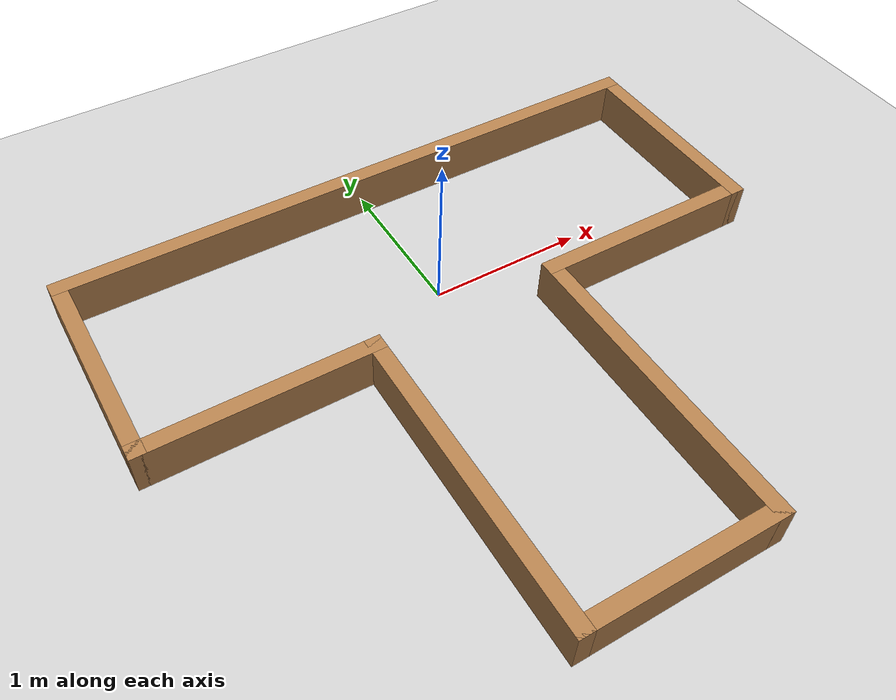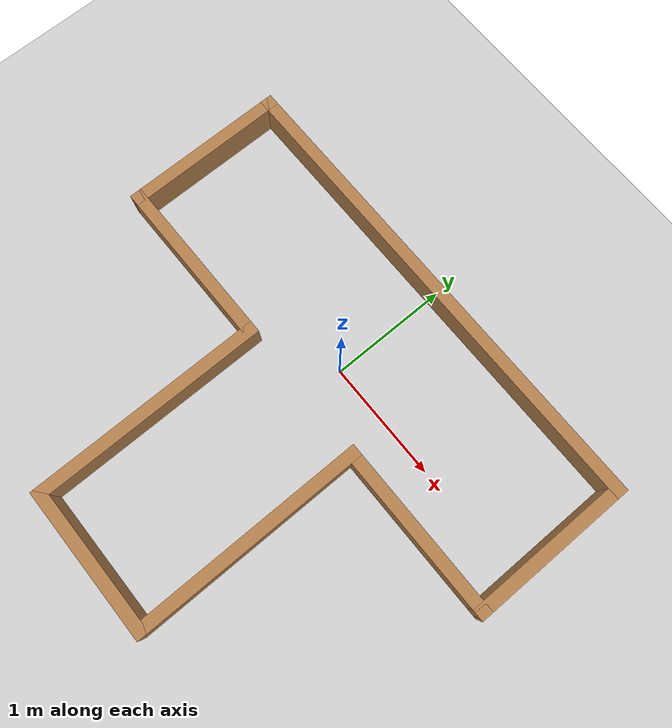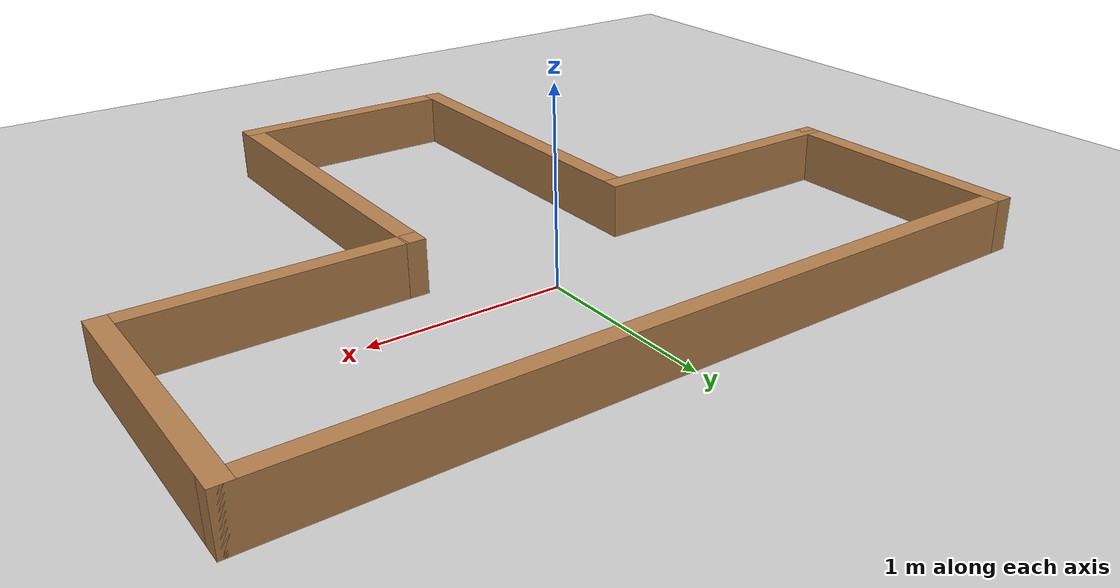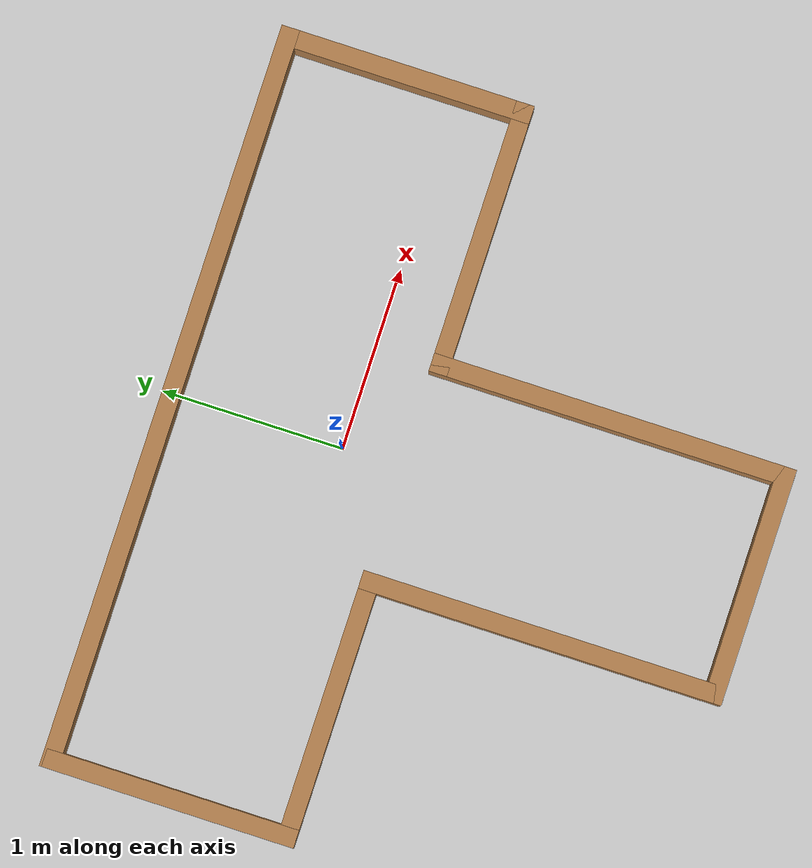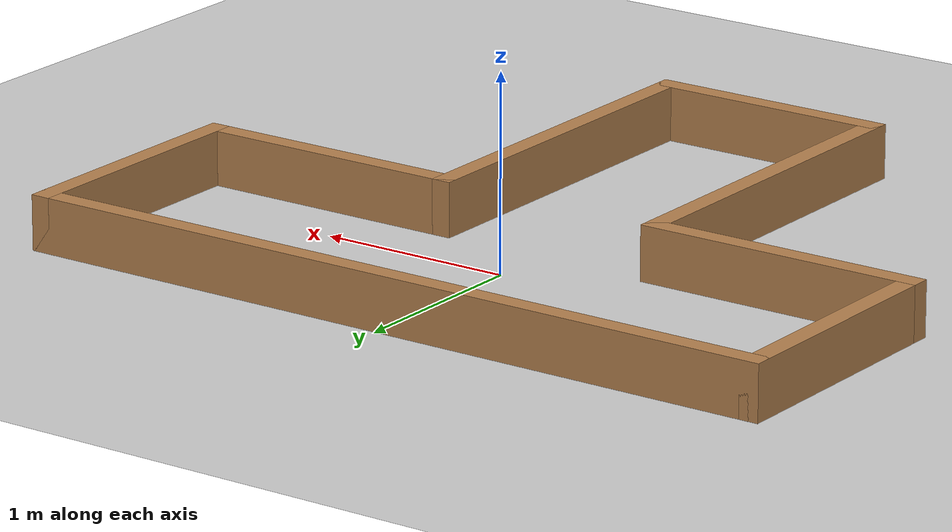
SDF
<sdf version="1.7">
 <world name="default">
  <physics type="ode">
   <real_time_update_rate>0.0</real_time_update_rate>
   <max_step_size>0.003</max_step_size>
   <ode>
    <solver>
     <type>quick</type>
     <iters>150</iters>
     <precon_iters>0</precon_iters>
     <sor>1.400000</sor>
     <use_dynamic_moi_rescaling>1</use_dynamic_moi_rescaling>
    </solver>
    <constraints>
     <cfm>0.00001</cfm>
     <erp>0.2</erp>
     <contact_max_correcting_vel>2000.000000</contact_max_correcting_vel>
     <contact_surface_layer>0.01000</contact_surface_layer>
    </constraints>
   </ode>
  </physics>
  <light name="sun" type="directional">
   <pose>0 0 10 0 -0 0</pose>
   <diffuse>0.8 0.8 0.8 1</diffuse>
   <specular>0.2 0.2 0.2 1</specular>
   <attenuation>
    <range>1000</range>
    <constant>0.9</constant>
    <linear>0.01</linear>
    <quadratic>0.001</quadratic>
   </attenuation>
   <direction>-0.5 0.1 -0.9</direction>
   <spot><inner_angle>0</inner_angle><outer_angle>0</outer_angle><falloff>0</falloff></spot>
  </light>
  <model name="ground_plane">
   <static>1</static>
   <link name="link">
    <collision name="collision">
     <geometry><plane><normal>0 0 1</normal><size>100 100</size></plane></geometry>
     <surface>
      <contact><collide_bitmask>65535</collide_bitmask></contact>
      <friction><ode><mu>100</mu><mu2>50</mu2></ode></friction>
     </surface>
    </collision>
    <visual name="visual">
     <cast_shadows>0</cast_shadows>
     <geometry><plane><normal>0 0 1</normal><size>100 100</size></plane></geometry>
     <material>
      <script><uri>file://media/materials/scripts/gazebo.material</uri><name>Gazebo/Grey</name></script>
     </material>
    </visual>
   </link>
  </model>
  <gravity>0 0 -9.8</gravity>
  <magnetic_field>6e-06 2.3e-05 -4.2e-05</magnetic_field>
  <atmosphere type="adiabatic"/>
  <scene><ambient>0.4 0.4 0.4 1</ambient><background>0.7 0.7 0.7 1</background><shadows>1</shadows></scene>
  <spherical_coordinates>
   <surface_model>EARTH_WGS84</surface_model>
   <latitude_deg>0</latitude_deg>
   <longitude_deg>0</longitude_deg>
   <elevation>0</elevation>
   <heading_deg>0</heading_deg>
  </spherical_coordinates>
  <model name="stage_6">
   <pose>1 -0.05 0 0 -0 0</pose>
   <link name="Wall_0">
    <collision name="Wall_0_Collision">
     <geometry><box><size>1.5 0.1 0.28</size></box></geometry>
     <pose>0 0 0.14 0 -0 0</pose>
    </collision>
    <visual name="Wall_0_Visual">
     <pose>0 0 0.14 0 -0 0</pose>
     <geometry><box><size>1.5 0.1 0.28</size></box></geometry>
     <material>
      <script><uri>file://media/materials/scripts/gazebo.material</uri><name>Gazebo/Wood</name></script>
      <ambient>1 0.764706 0.305882 1</ambient>
     </material>
     <meta><layer>0</layer></meta>
    </visual>
    <pose>-2.33 -0.309835 0 0 -0 0</pose>
   </link>
   <link name="Wall_10">
    <collision name="Wall_10_Collision">
     <geometry><box><size>1.4 0.1 0.28</size></box></geometry>
     <pose>0 0 0.14 0 -0 0</pose>
    </collision>
    <visual name="Wall_10_Visual">
     <pose>0 0 0.14 0 -0 0</pose>
     <geometry><box><size>1.4 0.1 0.28</size></box></geometry>
     <material>
      <script><uri>file://media/materials/scripts/gazebo.material</uri><name>Gazebo/Wood</name></script>
      <ambient>1 0.764706 0.305882 1</ambient>
     </material>
     <meta><layer>0</layer></meta>
    </visual>
    <pose>-3.03 0.340165 0 0 -0 1.5708</pose>
   </link>
   <link name="Wall_14">
    <collision name="Wall_14_Collision">
     <geometry><box><size>1.4 0.1 0.28</size></box></geometry>
     <pose>0 0 0.14 0 -0 0</pose>
    </collision>
    <visual name="Wall_14_Visual">
     <pose>0 0 0.14 0 -0 0</pose>
     <geometry><box><size>1.4 0.1 0.28</size></box></geometry>
     <material>
      <script><uri>file://media/materials/scripts/gazebo.material</uri><name>Gazebo/Wood</name></script>
      <ambient>1 0.764706 0.305882 1</ambient>
     </material>
     <meta><layer>0</layer></meta>
    </visual>
    <pose>0.97 0.340165 0 0 -0 1.5708</pose>
   </link>
   <link name="Wall_16">
    <collision name="Wall_16_Collision">
     <geometry><box><size>4.1 0.1 0.28</size></box></geometry>
     <pose>0 0 0.14 0 -0 0</pose>
    </collision>
    <visual name="Wall_16_Visual">
     <pose>0 0 0.14 0 -0 0</pose>
     <geometry><box><size>4.1 0.1 0.28</size></box></geometry>
     <material>
      <script><uri>file://media/materials/scripts/gazebo.material</uri><name>Gazebo/Wood</name></script>
      <ambient>1 0.764706 0.305882 1</ambient>
     </material>
     <meta><layer>0</layer></meta>
    </visual>
    <pose>-1.03 0.990165 0 0 -0 0</pose>
   </link>
   <link name="Wall_2">
    <collision name="Wall_2_Collision">
     <geometry><box><size>2 0.1 0.28</size></box></geometry>
     <pose>0 0 0.14 0 -0 0</pose>
    </collision>
    <visual name="Wall_2_Visual">
     <pose>0 0 0.14 0 -0 0</pose>
     <geometry><box><size>2 0.1 0.28</size></box></geometry>
     <material>
      <script><uri>file://media/materials/scripts/gazebo.material</uri><name>Gazebo/Wood</name></script>
      <ambient>1 0.764706 0.305882 1</ambient>
     </material>
     <meta><layer>0</layer></meta>
    </visual>
    <pose>-1.63 -1.25984 0 0 -0 -1.5708</pose>
   </link>
   <link name="Wall_4">
    <collision name="Wall_4_Collision">
     <geometry><box><size>1.3 0.1 0.28</size></box></geometry>
     <pose>0 0 0.14 0 -0 0</pose>
    </collision>
    <visual name="Wall_4_Visual">
     <pose>0 0 0.14 0 -0 0</pose>
     <geometry><box><size>1.3 0.1 0.28</size></box></geometry>
     <material>
      <script><uri>file://media/materials/scripts/gazebo.material</uri><name>Gazebo/Wood</name></script>
      <ambient>1 0.764706 0.305882 1</ambient>
     </material>
     <meta><layer>0</layer></meta>
    </visual>
    <pose>-1.03 -2.20983 0 0 -0 0</pose>
   </link>
   <link name="Wall_6">
    <collision name="Wall_6_Collision">
     <geometry><box><size>2.00066 0.1 0.28</size></box></geometry>
     <pose>0 0 0.14 0 -0 0</pose>
    </collision>
    <visual name="Wall_6_Visual">
     <pose>0 0 0.14 0 -0 0</pose>
     <geometry><box><size>2.00066 0.1 0.28</size></box></geometry>
     <material>
      <script><uri>file://media/materials/scripts/gazebo.material</uri><name>Gazebo/Wood</name></script>
      <ambient>1 0.764706 0.305882 1</ambient>
     </material>
     <meta><layer>0</layer></meta>
    </visual>
    <pose>-0.43 -1.25984 0 0 -0 1.5708</pose>
   </link>
   <link name="Wall_8">
    <collision name="Wall_8_Collision">
     <geometry><box><size>1.5 0.1 0.28</size></box></geometry>
     <pose>0 0 0.14 0 -0 0</pose>
    </collision>
    <visual name="Wall_8_Visual">
     <pose>0 0 0.14 0 -0 0</pose>
     <geometry><box><size>1.5 0.1 0.28</size></box></geometry>
     <material>
      <script><uri>file://media/materials/scripts/gazebo.material</uri><name>Gazebo/Wood</name></script>
      <ambient>1 0.764706 0.305882 1</ambient>
     </material>
     <meta><layer>0</layer></meta>
    </visual>
    <pose>0.27 -0.309835 0 0 -0 0</pose>
   </link>
   <static>1</static>
  </model>
 </world>
</sdf>
